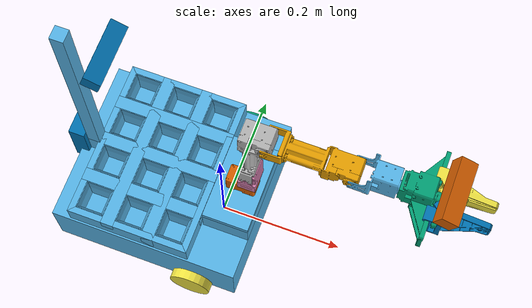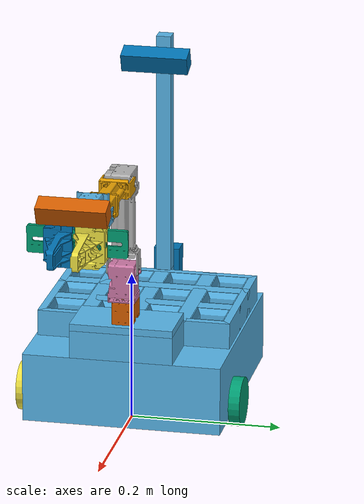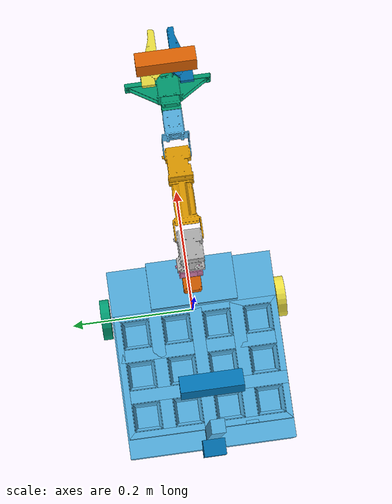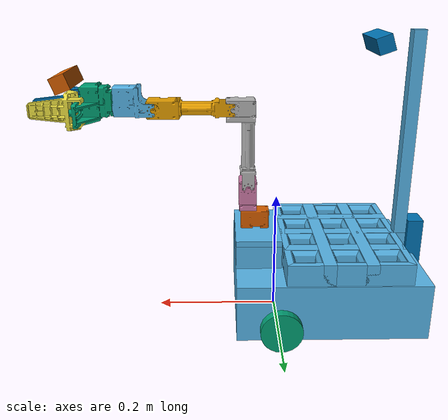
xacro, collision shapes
<?xml version="1.0" ?>
<!-- generated by make_xacro.py -->
<robot name="beebot" xmlns:xacro="http://www.ros.org/wiki/xacro">
  <xacro:arg name="mock_hardware" default="false"/>
  <xacro:arg name="mock_effort" default="0.0"/>
  <xacro:arg name="port" default="/dev/opencr"/>
  <xacro:arg name="twist_state" default="true"/>  <!-- true: joint2·3 상태 = 엔코더 + 중력 비틀림 (BeebotSystemHardware 헤더) · 강성 측정만 false -->
  <xacro:arg name="mesh_uri" default="package://ros_system/urdf/meshes"/>
  <link name="base_footprint"/>
  <joint name="base_joint" type="fixed">
    <parent link="base_footprint"/>
    <child link="base_link"/>
    <origin rpy="0.000000 -0.000000 0.000000" xyz="0.000000 0.000000 0.010000"/>
  </joint>
  <link name="base_link">
    <inertial>
      <origin rpy="0 0 0" xyz="-0.090000 -0.000158 0.082489"/>
      <mass value="2.597760"/>
      <inertia ixx="2.9371e-02" ixy="-1.9928e-05" ixz="6.7071e-03" iyy="3.3932e-02" iyz="-2.3183e-06" izz="3.0000e-02"/>
    </inertial>
    <visual>
      <origin rpy="0 0 0" xyz="0 0 0"/>
      <geometry>
        <mesh filename="$(arg mesh_uri)/base_link.stl" scale="0.001 0.001 0.001"/>
      </geometry>
    </visual>
    <!-- 2026-11-11 real plate stack: plates 8.5 mm, gaps 29 / 38.5 / 38.5, 1F bottom to 4F top 140 mm. base_link mesh remapped in z; 3F-mounted frames (basket, pole, battery) +1.7 mm, 4F (arm) +3.8 mm -->
    <!-- storage_support x 12: outer 44.5, hole 34, 35 mm high, top 8 mm chamfered to 42 -->
    <visual name="storage_support_0">
      <origin rpy="0 0 0" xyz="-0.169840 -0.097500 0.092700"/>
      <geometry>
        <mesh filename="$(arg mesh_uri)/storage_support.stl" scale="0.001 0.001 0.001"/>
      </geometry>
    </visual>
    <visual name="storage_support_1">
      <origin rpy="0 0 0" xyz="-0.169840 -0.032500 0.092700"/>
      <geometry>
        <mesh filename="$(arg mesh_uri)/storage_support.stl" scale="0.001 0.001 0.001"/>
      </geometry>
    </visual>
    <visual name="storage_support_2">
      <origin rpy="0 0 0" xyz="-0.169840 0.032500 0.092700"/>
      <geometry>
        <mesh filename="$(arg mesh_uri)/storage_support.stl" scale="0.001 0.001 0.001"/>
      </geometry>
    </visual>
    <visual name="storage_support_3">
      <origin rpy="0 0 0" xyz="-0.169840 0.097500 0.092700"/>
      <geometry>
        <mesh filename="$(arg mesh_uri)/storage_support.stl" scale="0.001 0.001 0.001"/>
      </geometry>
    </visual>
    <visual name="storage_support_4">
      <origin rpy="0 0 0" xyz="-0.104840 -0.097500 0.092700"/>
      <geometry>
        <mesh filename="$(arg mesh_uri)/storage_support.stl" scale="0.001 0.001 0.001"/>
      </geometry>
    </visual>
    <visual name="storage_support_5">
      <origin rpy="0 0 0" xyz="-0.104840 -0.032500 0.092700"/>
      <geometry>
        <mesh filename="$(arg mesh_uri)/storage_support.stl" scale="0.001 0.001 0.001"/>
      </geometry>
    </visual>
    <visual name="storage_support_6">
      <origin rpy="0 0 0" xyz="-0.104840 0.032500 0.092700"/>
      <geometry>
        <mesh filename="$(arg mesh_uri)/storage_support.stl" scale="0.001 0.001 0.001"/>
      </geometry>
    </visual>
    <visual name="storage_support_7">
      <origin rpy="0 0 0" xyz="-0.104840 0.097500 0.092700"/>
      <geometry>
        <mesh filename="$(arg mesh_uri)/storage_support.stl" scale="0.001 0.001 0.001"/>
      </geometry>
    </visual>
    <visual name="storage_support_8">
      <origin rpy="0 0 0" xyz="-0.039840 -0.097500 0.092700"/>
      <geometry>
        <mesh filename="$(arg mesh_uri)/storage_support.stl" scale="0.001 0.001 0.001"/>
      </geometry>
    </visual>
    <visual name="storage_support_9">
      <origin rpy="0 0 0" xyz="-0.039840 -0.032500 0.092700"/>
      <geometry>
        <mesh filename="$(arg mesh_uri)/storage_support.stl" scale="0.001 0.001 0.001"/>
      </geometry>
    </visual>
    <visual name="storage_support_10">
      <origin rpy="0 0 0" xyz="-0.039840 0.032500 0.092700"/>
      <geometry>
        <mesh filename="$(arg mesh_uri)/storage_support.stl" scale="0.001 0.001 0.001"/>
      </geometry>
    </visual>
    <visual name="storage_support_11">
      <origin rpy="0 0 0" xyz="-0.039840 0.097500 0.092700"/>
      <geometry>
        <mesh filename="$(arg mesh_uri)/storage_support.stl" scale="0.001 0.001 0.001"/>
      </geometry>
    </visual>
    <collision>
      <origin rpy="0.000000 0.000000 0.000000" xyz="-0.081850 0.000000 0.046350"/>
      <geometry>
        <box size="0.301300 0.265600 0.092700"/>
      </geometry>
    </collision>
    <collision>
      <origin rpy="0.000000 0.000000 0.000000" xyz="0.032000 0.000000 0.111550"/>
      <geometry>
        <box size="0.073600 0.137600 0.037700"/>
      </geometry>
    </collision>
    <collision>
      <origin rpy="0.000000 0.000000 0.000000" xyz="-0.209400 0.000000 0.110375"/>
      <geometry>
        <box size="0.020000 0.020000 0.035350"/>
      </geometry>
    </collision>
    <collision>
      <origin rpy="0.000000 0.000000 0.000000" xyz="0.032000 0.000000 0.135175"/>
      <geometry>
        <box size="0.073600 0.137600 0.009550"/>
      </geometry>
    </collision>
    <collision>
      <origin rpy="0.000000 0.000000 0.000000" xyz="-0.209400 0.000000 0.293600"/>
      <geometry>
        <box size="0.020000 0.020000 0.331100"/>
      </geometry>
    </collision>
    <collision>
      <origin rpy="0 0 0" xyz="-0.177000 0.064000 -0.005237"/>
      <geometry>
        <sphere radius="0.004763"/>
      </geometry>
    </collision>
    <collision>
      <origin rpy="0 0 0" xyz="-0.177000 -0.064000 -0.005237"/>
      <geometry>
        <sphere radius="0.004763"/>
      </geometry>
    </collision>
    <collision name="storage_collision_0">
      <origin rpy="1.570796 0.000000 0.000000" xyz="-0.064000 0.000000 0.001200"/>
      <geometry>
        <mesh filename="$(arg mesh_uri)/storage_collision/storage_0.stl" scale="0.001 0.001 0.001"/>
      </geometry>
    </collision>
    <collision name="storage_collision_1">
      <origin rpy="1.570796 0.000000 0.000000" xyz="-0.064000 0.000000 0.001200"/>
      <geometry>
        <mesh filename="$(arg mesh_uri)/storage_collision/storage_1.stl" scale="0.001 0.001 0.001"/>
      </geometry>
    </collision>
    <collision name="storage_collision_2">
      <origin rpy="1.570796 0.000000 0.000000" xyz="-0.064000 0.000000 0.001200"/>
      <geometry>
        <mesh filename="$(arg mesh_uri)/storage_collision/storage_2.stl" scale="0.001 0.001 0.001"/>
      </geometry>
    </collision>
    <collision name="storage_collision_3">
      <origin rpy="1.570796 0.000000 0.000000" xyz="-0.064000 0.000000 0.001200"/>
      <geometry>
        <mesh filename="$(arg mesh_uri)/storage_collision/storage_3.stl" scale="0.001 0.001 0.001"/>
      </geometry>
    </collision>
    <collision name="storage_collision_4">
      <origin rpy="1.570796 0.000000 0.000000" xyz="-0.064000 0.000000 0.001200"/>
      <geometry>
        <mesh filename="$(arg mesh_uri)/storage_collision/storage_4.stl" scale="0.001 0.001 0.001"/>
      </geometry>
    </collision>
    <collision name="storage_collision_5">
      <origin rpy="1.570796 0.000000 0.000000" xyz="-0.064000 0.000000 0.001200"/>
      <geometry>
        <mesh filename="$(arg mesh_uri)/storage_collision/storage_5.stl" scale="0.001 0.001 0.001"/>
      </geometry>
    </collision>
    <collision name="storage_collision_6">
      <origin rpy="1.570796 0.000000 0.000000" xyz="-0.064000 0.000000 0.001200"/>
      <geometry>
        <mesh filename="$(arg mesh_uri)/storage_collision/storage_6.stl" scale="0.001 0.001 0.001"/>
      </geometry>
    </collision>
    <collision name="storage_collision_7">
      <origin rpy="1.570796 0.000000 0.000000" xyz="-0.064000 0.000000 0.001200"/>
      <geometry>
        <mesh filename="$(arg mesh_uri)/storage_collision/storage_7.stl" scale="0.001 0.001 0.001"/>
      </geometry>
    </collision>
    <collision name="storage_collision_8">
      <origin rpy="1.570796 0.000000 0.000000" xyz="-0.064000 0.000000 0.001200"/>
      <geometry>
        <mesh filename="$(arg mesh_uri)/storage_collision/storage_8.stl" scale="0.001 0.001 0.001"/>
      </geometry>
    </collision>
    <collision name="storage_support_0_0">
      <origin rpy="0 0 0" xyz="-0.169840 -0.097500 0.092700"/>
      <geometry>
        <mesh filename="$(arg mesh_uri)/storage_support_wall_0.stl" scale="0.001 0.001 0.001"/>
      </geometry>
    </collision>
    <collision name="storage_support_0_1">
      <origin rpy="0 0 0" xyz="-0.169840 -0.097500 0.092700"/>
      <geometry>
        <mesh filename="$(arg mesh_uri)/storage_support_wall_1.stl" scale="0.001 0.001 0.001"/>
      </geometry>
    </collision>
    <collision name="storage_support_0_2">
      <origin rpy="0 0 0" xyz="-0.169840 -0.097500 0.092700"/>
      <geometry>
        <mesh filename="$(arg mesh_uri)/storage_support_wall_2.stl" scale="0.001 0.001 0.001"/>
      </geometry>
    </collision>
    <collision name="storage_support_0_3">
      <origin rpy="0 0 0" xyz="-0.169840 -0.097500 0.092700"/>
      <geometry>
        <mesh filename="$(arg mesh_uri)/storage_support_wall_3.stl" scale="0.001 0.001 0.001"/>
      </geometry>
    </collision>
    <collision name="storage_support_1_0">
      <origin rpy="0 0 0" xyz="-0.169840 -0.032500 0.092700"/>
      <geometry>
        <mesh filename="$(arg mesh_uri)/storage_support_wall_0.stl" scale="0.001 0.001 0.001"/>
      </geometry>
    </collision>
    <collision name="storage_support_1_1">
      <origin rpy="0 0 0" xyz="-0.169840 -0.032500 0.092700"/>
      <geometry>
        <mesh filename="$(arg mesh_uri)/storage_support_wall_1.stl" scale="0.001 0.001 0.001"/>
      </geometry>
    </collision>
    <collision name="storage_support_1_2">
      <origin rpy="0 0 0" xyz="-0.169840 -0.032500 0.092700"/>
      <geometry>
        <mesh filename="$(arg mesh_uri)/storage_support_wall_2.stl" scale="0.001 0.001 0.001"/>
      </geometry>
    </collision>
    <collision name="storage_support_1_3">
      <origin rpy="0 0 0" xyz="-0.169840 -0.032500 0.092700"/>
      <geometry>
        <mesh filename="$(arg mesh_uri)/storage_support_wall_3.stl" scale="0.001 0.001 0.001"/>
      </geometry>
    </collision>
    <collision name="storage_support_2_0">
      <origin rpy="0 0 0" xyz="-0.169840 0.032500 0.092700"/>
      <geometry>
        <mesh filename="$(arg mesh_uri)/storage_support_wall_0.stl" scale="0.001 0.001 0.001"/>
      </geometry>
    </collision>
    <collision name="storage_support_2_1">
      <origin rpy="0 0 0" xyz="-0.169840 0.032500 0.092700"/>
      <geometry>
        <mesh filename="$(arg mesh_uri)/storage_support_wall_1.stl" scale="0.001 0.001 0.001"/>
      </geometry>
    </collision>
    <collision name="storage_support_2_2">
      <origin rpy="0 0 0" xyz="-0.169840 0.032500 0.092700"/>
      <geometry>
        <mesh filename="$(arg mesh_uri)/storage_support_wall_2.stl" scale="0.001 0.001 0.001"/>
      </geometry>
    </collision>
    <collision name="storage_support_2_3">
      <origin rpy="0 0 0" xyz="-0.169840 0.032500 0.092700"/>
      <geometry>
        <mesh filename="$(arg mesh_uri)/storage_support_wall_3.stl" scale="0.001 0.001 0.001"/>
      </geometry>
    </collision>
    <collision name="storage_support_3_0">
      <origin rpy="0 0 0" xyz="-0.169840 0.097500 0.092700"/>
      <geometry>
        <mesh filename="$(arg mesh_uri)/storage_support_wall_0.stl" scale="0.001 0.001 0.001"/>
      </geometry>
    </collision>
    <collision name="storage_support_3_1">
      <origin rpy="0 0 0" xyz="-0.169840 0.097500 0.092700"/>
      <geometry>
        <mesh filename="$(arg mesh_uri)/storage_support_wall_1.stl" scale="0.001 0.001 0.001"/>
      </geometry>
    </collision>
    <collision name="storage_support_3_2">
      <origin rpy="0 0 0" xyz="-0.169840 0.097500 0.092700"/>
      <geometry>
        <mesh filename="$(arg mesh_uri)/storage_support_wall_2.stl" scale="0.001 0.001 0.001"/>
      </geometry>
    </collision>
    <collision name="storage_support_3_3">
      <origin rpy="0 0 0" xyz="-0.169840 0.097500 0.092700"/>
      <geometry>
        <mesh filename="$(arg mesh_uri)/storage_support_wall_3.stl" scale="0.001 0.001 0.001"/>
      </geometry>
    </collision>
    <collision name="storage_support_4_0">
      <origin rpy="0 0 0" xyz="-0.104840 -0.097500 0.092700"/>
      <geometry>
        <mesh filename="$(arg mesh_uri)/storage_support_wall_0.stl" scale="0.001 0.001 0.001"/>
      </geometry>
    </collision>
    <collision name="storage_support_4_1">
      <origin rpy="0 0 0" xyz="-0.104840 -0.097500 0.092700"/>
      <geometry>
        <mesh filename="$(arg mesh_uri)/storage_support_wall_1.stl" scale="0.001 0.001 0.001"/>
      </geometry>
    </collision>
    <collision name="storage_support_4_2">
      <origin rpy="0 0 0" xyz="-0.104840 -0.097500 0.092700"/>
      <geometry>
        <mesh filename="$(arg mesh_uri)/storage_support_wall_2.stl" scale="0.001 0.001 0.001"/>
      </geometry>
    </collision>
    <collision name="storage_support_4_3">
      <origin rpy="0 0 0" xyz="-0.104840 -0.097500 0.092700"/>
      <geometry>
        <mesh filename="$(arg mesh_uri)/storage_support_wall_3.stl" scale="0.001 0.001 0.001"/>
      </geometry>
    </collision>
    <collision name="storage_support_5_0">
      <origin rpy="0 0 0" xyz="-0.104840 -0.032500 0.092700"/>
      <geometry>
        <mesh filename="$(arg mesh_uri)/storage_support_wall_0.stl" scale="0.001 0.001 0.001"/>
      </geometry>
    </collision>
    <collision name="storage_support_5_1">
      <origin rpy="0 0 0" xyz="-0.104840 -0.032500 0.092700"/>
      <geometry>
        <mesh filename="$(arg mesh_uri)/storage_support_wall_1.stl" scale="0.001 0.001 0.001"/>
      </geometry>
    </collision>
    <collision name="storage_support_5_2">
      <origin rpy="0 0 0" xyz="-0.104840 -0.032500 0.092700"/>
      <geometry>
        <mesh filename="$(arg mesh_uri)/storage_support_wall_2.stl" scale="0.001 0.001 0.001"/>
      </geometry>
    </collision>
    <collision name="storage_support_5_3">
      <origin rpy="0 0 0" xyz="-0.104840 -0.032500 0.092700"/>
      <geometry>
        <mesh filename="$(arg mesh_uri)/storage_support_wall_3.stl" scale="0.001 0.001 0.001"/>
      </geometry>
    </collision>
    <collision name="storage_support_6_0">
      <origin rpy="0 0 0" xyz="-0.104840 0.032500 0.092700"/>
      <geometry>
        <mesh filename="$(arg mesh_uri)/storage_support_wall_0.stl" scale="0.001 0.001 0.001"/>
      </geometry>
    </collision>
    <collision name="storage_support_6_1">
      <origin rpy="0 0 0" xyz="-0.104840 0.032500 0.092700"/>
      <geometry>
        <mesh filename="$(arg mesh_uri)/storage_support_wall_1.stl" scale="0.001 0.001 0.001"/>
      </geometry>
    </collision>
    <collision name="storage_support_6_2">
      <origin rpy="0 0 0" xyz="-0.104840 0.032500 0.092700"/>
      <geometry>
        <mesh filename="$(arg mesh_uri)/storage_support_wall_2.stl" scale="0.001 0.001 0.001"/>
      </geometry>
    </collision>
    <collision name="storage_support_6_3">
      <origin rpy="0 0 0" xyz="-0.104840 0.032500 0.092700"/>
      <geometry>
        <mesh filename="$(arg mesh_uri)/storage_support_wall_3.stl" scale="0.001 0.001 0.001"/>
      </geometry>
    </collision>
    <collision name="storage_support_7_0">
      <origin rpy="0 0 0" xyz="-0.104840 0.097500 0.092700"/>
      <geometry>
        <mesh filename="$(arg mesh_uri)/storage_support_wall_0.stl" scale="0.001 0.001 0.001"/>
      </geometry>
    </collision>
    <collision name="storage_support_7_1">
      <origin rpy="0 0 0" xyz="-0.104840 0.097500 0.092700"/>
      <geometry>
        <mesh filename="$(arg mesh_uri)/storage_support_wall_1.stl" scale="0.001 0.001 0.001"/>
      </geometry>
    </collision>
    <collision name="storage_support_7_2">
      <origin rpy="0 0 0" xyz="-0.104840 0.097500 0.092700"/>
      <geometry>
        <mesh filename="$(arg mesh_uri)/storage_support_wall_2.stl" scale="0.001 0.001 0.001"/>
      </geometry>
    </collision>
    <collision name="storage_support_7_3">
      <origin rpy="0 0 0" xyz="-0.104840 0.097500 0.092700"/>
      <geometry>
        <mesh filename="$(arg mesh_uri)/storage_support_wall_3.stl" scale="0.001 0.001 0.001"/>
      </geometry>
    </collision>
    <collision name="storage_support_8_0">
      <origin rpy="0 0 0" xyz="-0.039840 -0.097500 0.092700"/>
      <geometry>
        <mesh filename="$(arg mesh_uri)/storage_support_wall_0.stl" scale="0.001 0.001 0.001"/>
      </geometry>
    </collision>
    <collision name="storage_support_8_1">
      <origin rpy="0 0 0" xyz="-0.039840 -0.097500 0.092700"/>
      <geometry>
        <mesh filename="$(arg mesh_uri)/storage_support_wall_1.stl" scale="0.001 0.001 0.001"/>
      </geometry>
    </collision>
    <collision name="storage_support_8_2">
      <origin rpy="0 0 0" xyz="-0.039840 -0.097500 0.092700"/>
      <geometry>
        <mesh filename="$(arg mesh_uri)/storage_support_wall_2.stl" scale="0.001 0.001 0.001"/>
      </geometry>
    </collision>
    <collision name="storage_support_8_3">
      <origin rpy="0 0 0" xyz="-0.039840 -0.097500 0.092700"/>
      <geometry>
        <mesh filename="$(arg mesh_uri)/storage_support_wall_3.stl" scale="0.001 0.001 0.001"/>
      </geometry>
    </collision>
    <collision name="storage_support_9_0">
      <origin rpy="0 0 0" xyz="-0.039840 -0.032500 0.092700"/>
      <geometry>
        <mesh filename="$(arg mesh_uri)/storage_support_wall_0.stl" scale="0.001 0.001 0.001"/>
      </geometry>
    </collision>
    <collision name="storage_support_9_1">
      <origin rpy="0 0 0" xyz="-0.039840 -0.032500 0.092700"/>
      <geometry>
        <mesh filename="$(arg mesh_uri)/storage_support_wall_1.stl" scale="0.001 0.001 0.001"/>
      </geometry>
    </collision>
    <collision name="storage_support_9_2">
      <origin rpy="0 0 0" xyz="-0.039840 -0.032500 0.092700"/>
      <geometry>
        <mesh filename="$(arg mesh_uri)/storage_support_wall_2.stl" scale="0.001 0.001 0.001"/>
      </geometry>
    </collision>
    <collision name="storage_support_9_3">
      <origin rpy="0 0 0" xyz="-0.039840 -0.032500 0.092700"/>
      <geometry>
        <mesh filename="$(arg mesh_uri)/storage_support_wall_3.stl" scale="0.001 0.001 0.001"/>
      </geometry>
    </collision>
    <collision name="storage_support_10_0">
      <origin rpy="0 0 0" xyz="-0.039840 0.032500 0.092700"/>
      <geometry>
        <mesh filename="$(arg mesh_uri)/storage_support_wall_0.stl" scale="0.001 0.001 0.001"/>
      </geometry>
    </collision>
    <collision name="storage_support_10_1">
      <origin rpy="0 0 0" xyz="-0.039840 0.032500 0.092700"/>
      <geometry>
        <mesh filename="$(arg mesh_uri)/storage_support_wall_1.stl" scale="0.001 0.001 0.001"/>
      </geometry>
    </collision>
    <collision name="storage_support_10_2">
      <origin rpy="0 0 0" xyz="-0.039840 0.032500 0.092700"/>
      <geometry>
        <mesh filename="$(arg mesh_uri)/storage_support_wall_2.stl" scale="0.001 0.001 0.001"/>
      </geometry>
    </collision>
    <collision name="storage_support_10_3">
      <origin rpy="0 0 0" xyz="-0.039840 0.032500 0.092700"/>
      <geometry>
        <mesh filename="$(arg mesh_uri)/storage_support_wall_3.stl" scale="0.001 0.001 0.001"/>
      </geometry>
    </collision>
    <collision name="storage_support_11_0">
      <origin rpy="0 0 0" xyz="-0.039840 0.097500 0.092700"/>
      <geometry>
        <mesh filename="$(arg mesh_uri)/storage_support_wall_0.stl" scale="0.001 0.001 0.001"/>
      </geometry>
    </collision>
    <collision name="storage_support_11_1">
      <origin rpy="0 0 0" xyz="-0.039840 0.097500 0.092700"/>
      <geometry>
        <mesh filename="$(arg mesh_uri)/storage_support_wall_1.stl" scale="0.001 0.001 0.001"/>
      </geometry>
    </collision>
    <collision name="storage_support_11_2">
      <origin rpy="0 0 0" xyz="-0.039840 0.097500 0.092700"/>
      <geometry>
        <mesh filename="$(arg mesh_uri)/storage_support_wall_2.stl" scale="0.001 0.001 0.001"/>
      </geometry>
    </collision>
    <collision name="storage_support_11_3">
      <origin rpy="0 0 0" xyz="-0.039840 0.097500 0.092700"/>
      <geometry>
        <mesh filename="$(arg mesh_uri)/storage_support_wall_3.stl" scale="0.001 0.001 0.001"/>
      </geometry>
    </collision>
  </link>
  <joint name="wheel_left_joint" type="continuous">
    <parent link="base_link"/>
    <child link="wheel_left_link"/>
    <origin rpy="0.000000 -0.000000 0.000000" xyz="0.000000 0.143900 0.023000"/>
    <axis xyz="0 1 0"/>
    <limit effort="3.0" velocity="8.063"/>
  </joint>
  <link name="wheel_left_link">
    <inertial>
      <origin rpy="0 0 0" xyz="0.000000 -0.000704 0.000002"/>
      <mass value="0.028500"/>
      <inertia ixx="1.1098e-05" ixy="5.7318e-09" ixz="3.1818e-09" iyy="2.0549e-05" iyz="-4.8114e-11" izz="1.1095e-05"/>
    </inertial>
    <visual>
      <origin rpy="0 0 0" xyz="0 0 0"/>
      <geometry>
        <mesh filename="$(arg mesh_uri)/wheel_left_link.stl" scale="0.001 0.001 0.001"/>
      </geometry>
    </visual>
    <collision>
      <origin rpy="1.570796 0 0" xyz="0 0 0"/>
      <geometry>
        <cylinder length="0.015000" radius="0.033000"/>
      </geometry>
    </collision>
  </link>
  <joint name="wheel_right_joint" type="continuous">
    <parent link="base_link"/>
    <child link="wheel_right_link"/>
    <origin rpy="0.000000 -0.000000 0.000000" xyz="0.000000 -0.143900 0.023000"/>
    <axis xyz="0 1 0"/>
    <limit effort="3.0" velocity="8.063"/>
  </joint>
  <link name="wheel_right_link">
    <inertial>
      <origin rpy="0 0 0" xyz="0.000000 0.000704 -0.000002"/>
      <mass value="0.028500"/>
      <inertia ixx="1.1098e-05" ixy="-5.7318e-09" ixz="-3.1818e-09" iyy="2.0549e-05" iyz="-4.8114e-11" izz="1.1095e-05"/>
    </inertial>
    <visual>
      <origin rpy="0 0 0" xyz="0 0 0"/>
      <geometry>
        <mesh filename="$(arg mesh_uri)/wheel_right_link.stl" scale="0.001 0.001 0.001"/>
      </geometry>
    </visual>
    <collision>
      <origin rpy="1.570796 0 0" xyz="0 0 0"/>
      <geometry>
        <cylinder length="0.015000" radius="0.033000"/>
      </geometry>
    </collision>
  </link>
  <joint name="pole_front_cam_joint" type="fixed">
    <parent link="base_link"/>
    <child link="pole_front_cam_link"/>
    <origin rpy="0.000000 0.331613 0.000000" xyz="-0.137869 0.000185 0.436632"/>
  </joint>
  <link name="pole_front_cam_link">
    <inertial>
      <origin rpy="0 0 0" xyz="-0.013393 0.001408 -0.000023"/>
      <mass value="0.072000"/>
      <inertia ixx="4.6203e-05" ixy="4.1597e-07" ixz="2.0009e-08" iyy="6.9218e-06" iyz="3.6648e-09" izz="4.6614e-05"/>
    </inertial>
    <visual>
      <origin rpy="0 0 0" xyz="0 0 0"/>
      <geometry>
        <mesh filename="$(arg mesh_uri)/camera_rear_link.stl" scale="0.001 0.001 0.001"/>
      </geometry>
    </visual>
    <collision>
      <origin rpy="0.000000 0.000000 0.000000" xyz="-0.012525 -0.000058 -0.000000"/>
      <geometry>
        <box size="0.025050 0.089714 0.025000"/>
      </geometry>
    </collision>
  </link>
  <joint name="arm_mount_joint" type="fixed">
    <parent link="base_link"/>
    <child link="arm_base_link"/>
    <!-- arm mount z 0.133975 -> 0.129275 (11/12): 바닥~4층 윗면 실측 145 mm (11/11 · 11/12), 0자세 joint2 · joint3 축 줄자 222 / 350 mm와 일치 (0.133975일 때 226.5 / 354.5) -->
    <origin rpy="-0.000000 0.000000 0.000000" xyz="0.047985 -0.00023 0.129275"/>
  </joint>
  <link name="arm_base_link">
    <inertial>
      <origin rpy="0.0 0.0 0.0" xyz="-0.01169226743052282 -3.774353380840405e-15 0.023926534323405226"/>
      <mass value="0.08108257974970318"/>
      <inertia ixx="1.2862502962900217e-05" ixy="6.251056457349735e-19" ixz="-1.811662342359175e-07" iyy="2.2531969968508323e-05" iyz="1.5086560978736273e-17" izz="1.9821050957242446e-05"/>
    </inertial>
    <visual name="arm_base_link_visual">
      <origin rpy="0.0 -0.0 0.0" xyz="0.0 0.0 0.0"/>
      <geometry>
        <mesh filename="$(arg mesh_uri)/arm_base_1.stl" scale="0.001 0.001 0.001"/>
      </geometry>
    </visual>
    <collision name="arm_base_link_collision">
      <origin rpy="0.0 -0.0 0.0" xyz="0.0 0.0 0.0"/>
      <geometry>
        <mesh filename="$(arg mesh_uri)/arm_base_1.stl" scale="0.001 0.001 0.001"/>
      </geometry>
    </collision>
  </link>
  <link name="shoulder_link">
    <inertial>
      <origin rpy="0.0 0.0 0.0" xyz="0.0 0.000668578344313189 0.028869490461060965"/>
      <mass value="0.08583374201044289"/>
      <inertia ixx="2.6324742259425243e-05" ixy="-7.312006911381859e-16" ixz="-9.128905585988183e-18" iyy="2.2861624315008813e-05" iyz="-8.980408739570743e-08" izz="1.4187591495603722e-05"/>
    </inertial>
    <visual name="shoulder_link_visual">
      <origin rpy="0.0 0.0 0.0" xyz="0.0 0.0 -0.0409"/>
      <geometry>
        <mesh filename="$(arg mesh_uri)/shoulder_1.stl" scale="0.001 0.001 0.001"/>
      </geometry>
    </visual>
    <collision name="shoulder_link_collision">
      <origin rpy="0.0 0.0 0.0" xyz="0.0 0.0 -0.0409"/>
      <geometry>
        <mesh filename="$(arg mesh_uri)/shoulder_1.stl" scale="0.001 0.001 0.001"/>
      </geometry>
    </collision>
  </link>
  <link name="upper_arm_link">
    <inertial>
      <origin rpy="1.570796326794511 0.0 3.141592653375372" xyz="0.008487065078161757 0.0004453244413869725 0.10499673065502808"/>
      <mass value="0.12886465633856012"/>
      <inertia ixx="0.00018774476358412258" ixy="2.3927185167595554e-05" ixz="2.494779573069466e-07" iyy="3.578068745086586e-05" iyz="-1.3200789827030247e-06" izz="0.00019584173585813564"/>
    </inertial>
    <visual name="upper_arm_link_visual">
      <origin rpy="0.0 0.0 0.0" xyz="0.0 0.0 -0.08249999999999999"/>
      <geometry>
        <mesh filename="$(arg mesh_uri)/link1_1.stl" scale="0.001 0.001 0.001"/>
      </geometry>
    </visual>
    <collision name="upper_arm_link_collision">
      <origin rpy="0.0 0.0 0.0" xyz="0.0 0.0 -0.08249999999999999"/>
      <geometry>
        <mesh filename="$(arg mesh_uri)/link1_1.stl" scale="0.001 0.001 0.001"/>
      </geometry>
    </collision>
  </link>
  <link name="forearm_link">
    <inertial>
      <origin rpy="1.5707963267949108 0.0 3.14159265337551" xyz="0.0937959598859132 0.0004892301406918195 6.576999200189225e-07"/>
      <mass value="0.117299760592073"/>
      <inertia ixx="1.9524545623177503e-05" ixy="-2.9158900918577e-09" ixz="1.0925502645848908e-06" iyy="0.00014316575812332259" iyz="3.773501040795638e-11" izz="0.00013706538722077516"/>
    </inertial>
    <visual name="forearm_link_visual">
      <origin rpy="0.0 0.0 0.0" xyz="-0.023999999999999997 0.0 -0.21050000000000005"/>
      <geometry>
        <mesh filename="$(arg mesh_uri)/link2_1.stl" scale="0.001 0.001 0.001"/>
      </geometry>
    </visual>
    <collision name="forearm_link_collision">
      <origin rpy="0.0 0.0 0.0" xyz="-0.023999999999999997 0.0 -0.21050000000000005"/>
      <geometry>
        <mesh filename="$(arg mesh_uri)/link2_1.stl" scale="0.001 0.001 0.001"/>
      </geometry>
    </collision>
  </link>
  <link name="wrist_link">
    <inertial>
      <origin rpy="1.570796326794886 0.0 3.1415926533755343" xyz="0.04362261925352582 -4.4208071231510715e-11 0.01144891623665953"/>
      <mass value="0.09015230299876778"/>
      <inertia ixx="2.376831067770098e-05" ixy="5.954218246732174e-07" ixz="-3.5110061152839838e-15" iyy="1.98868978503507e-05" iyz="2.3069523907684884e-16" izz="2.9205178935103743e-05"/>
    </inertial>
    <visual name="wrist_link_visual">
      <origin rpy="0.0 0.0 0.0" xyz="-0.148 0.0 -0.2105"/>
      <geometry>
        <mesh filename="$(arg mesh_uri)/wrist_1.stl" scale="0.001 0.001 0.001"/>
      </geometry>
    </visual>
    <collision name="wrist_link_collision">
      <origin rpy="0.0 0.0 0.0" xyz="-0.148 0.0 -0.2105"/>
      <geometry>
        <mesh filename="$(arg mesh_uri)/wrist_1.stl" scale="0.001 0.001 0.001"/>
      </geometry>
    </collision>
  </link>
  <link name="gripper_link">
    <inertial>
      <origin rpy="-1.5707963267948966 0.0 -1.5707963270091663" xyz="0.03333120209251042 1.5886189045943526e-07 0.008076961447025329"/>
      <mass value="0.17574131271191906"/>
      <inertia ixx="7.566997046639816e-05" ixy="4.58037525130514e-08" ixz="1.147686837904163e-09" iyy="0.00010679192530828156" iyz="-8.666284099644634e-06" izz="0.00010974001130350429"/>
    </inertial>
    <visual name="gripper_link_visual">
      <origin rpy="0.0 0.0 -4.2852856514244266e-10" xyz="-0.21089999999999998 0.0 -0.21050000000000005"/>
      <geometry>
        <mesh filename="$(arg mesh_uri)/gripper_body_1.stl" scale="0.001 0.001 0.001"/>
      </geometry>
    </visual>
    <visual name="gripper_cam_bracket_visual">  <!-- CB_A_v02 (2026-11-11). Camera pose stays on gripper_cam_joint -->
      <origin rpy="0 0 0" xyz="0 0 0"/>
      <geometry>
        <mesh filename="$(arg mesh_uri)/gripper_cam_bracket.stl" scale="0.001 0.001 0.001"/>
      </geometry>
    </visual>
    <collision name="gripper_link_collision">
      <origin rpy="0.0 0.0 -4.2852856514244266e-10" xyz="-0.21089999999999998 0.0 -0.21050000000000005"/>
      <geometry>
        <mesh filename="$(arg mesh_uri)/gripper_body_1.stl" scale="0.001 0.001 0.001"/>
      </geometry>
    </collision>
  </link>
  <link name="finger_left_link">
    <inertial>
      <origin rpy="-1.5707963267949216 0.0 -3.141592653574975" xyz="0.021558941309700663 -0.01842080592004969 8.180647437866214e-06"/>
      <mass value="0.0535652061896923"/>
      <inertia ixx="1.6044439735299576e-05" ixy="3.5963237118778324e-09" ixz="4.605246566927584e-06" iyy="3.0067540639167056e-05" iyz="1.5747727444362111e-09" izz="3.8262391196432324e-05"/>
    </inertial>
    <visual name="finger_left_link_visual">
      <origin rpy="0.0 0.0 0.0" xyz="-0.2640500000000004 -0.0386138699999949 -0.21050000000000046"/>
      <geometry>
        <mesh filename="$(arg mesh_uri)/finger_R_1.stl" scale="0.001 0.001 0.001"/>
      </geometry>
    </visual>
    <collision name="finger_left_link_collision">
      <origin rpy="0.0 0.0 0.0" xyz="-0.2640500000000004 -0.0386138699999949 -0.21050000000000046"/>
      <geometry>
        <mesh filename="$(arg mesh_uri)/finger_R_1.stl" scale="0.001 0.001 0.001"/>
      </geometry>
    </collision>
  </link>
  <link name="finger_right_link">
    <inertial>
      <origin rpy="1.5707963267948715 0.0 -3.141592653574975" xyz="0.021557990879750716 0.018420805939884263 -8.180633799630354e-06"/>
      <mass value="0.05356520623406594"/>
      <inertia ixx="1.6044441819699544e-05" ixy="3.5958195413410427e-09" ixz="4.605674889789638e-06" iyy="3.0069181530455354e-05" iyz="1.5747659279198598e-09" izz="3.826403413411749e-05"/>
    </inertial>
    <visual name="finger_right_link_visual">
      <origin rpy="0.0 0.0 0.0" xyz="-0.2640499999999996 0.03861387000000513 -0.2104999999999996"/>
      <geometry>
        <mesh filename="$(arg mesh_uri)/finger_L_1.stl" scale="0.001 0.001 0.001"/>
      </geometry>
    </visual>
    <collision name="finger_right_link_collision">
      <origin rpy="0.0 0.0 0.0" xyz="-0.2640499999999996 0.03861387000000513 -0.2104999999999996"/>
      <geometry>
        <mesh filename="$(arg mesh_uri)/finger_L_1.stl" scale="0.001 0.001 0.001"/>
      </geometry>
    </collision>
  </link>
  <joint name="joint1" type="revolute">
    <origin rpy="0.0 0.0 0.0" xyz="0.0 0.0 0.0409"/>
    <parent link="arm_base_link"/>
    <child link="shoulder_link"/>
    <axis xyz="0 0 1"/>
    <limit effort="4.1" lower="-3.14159" upper="3.14159" velocity="4.817"/>
  </joint>
  <joint name="joint2" type="revolute">
    <origin rpy="0.0 0.0 0.0" xyz="0.0 0.0 0.041599999999999984"/>
    <parent link="shoulder_link"/>
    <child link="upper_arm_link"/>
    <axis xyz="0 1 0"/>
    <limit effort="4.1" lower="-1.919862" upper="1.919862" velocity="4.817"/>
  </joint>
  <joint name="joint3" type="revolute">
    <origin rpy="0.0 0.0 0.0" xyz="0.024 0.0 0.12800000000000003"/>
    <parent link="upper_arm_link"/>
    <child link="forearm_link"/>
    <axis xyz="0 1 0"/>
    <limit effort="4.1" lower="-1.570796" upper="1.396263" velocity="4.817"/>
  </joint>
  <joint name="joint4" type="revolute">
    <origin rpy="0.0 0.0 0.0" xyz="0.12400000000000001 0.0 0.0"/>
    <parent link="forearm_link"/>
    <child link="wrist_link"/>
    <axis xyz="0 1 0"/>
    <limit effort="4.1" lower="-1.7" upper="1.97" velocity="4.817"/>
  </joint>
  <joint name="joint5" type="revolute">
    <origin rpy="0.0 0.0 0.0" xyz="0.06290000000000001 0.0 0.0"/>
    <parent link="wrist_link"/>
    <child link="gripper_link"/>
    <axis xyz="1 0 0"/>
    <limit effort="4.1" lower="-3.141593" upper="3.141593" velocity="4.817"/>
  </joint>
  <joint name="gripper_left_joint" type="prismatic">
    <origin rpy="0.0 0.0 0.0" xyz="0.05315000000000042 0.03861386999999943 0.0"/>
    <parent link="gripper_link"/>
    <child link="finger_left_link"/>
    <axis xyz="0 1 0"/>
    <limit effort="20.0" lower="0.0000" upper="0.0265" velocity="0.07"/>
  </joint>
  <joint name="gripper_right_joint" type="prismatic">
    <origin rpy="0.0 0.0 0.0" xyz="0.053149999999999614 -0.03861387000000057 0.0"/>
    <parent link="gripper_link"/>
    <child link="finger_right_link"/>
    <axis xyz="0 -1 0"/>
    <limit effort="20.0" lower="0.0000" upper="0.0265" velocity="0.07"/>
    <mimic joint="gripper_left_joint" multiplier="1" offset="0"/>
  </joint>
  <!-- gripper_cam pitch 20.0 -> 20.8 deg (11/12 실측, 브래킷 CB_A 교체 후): look 자세 책상 평면 피팅 pitch + 높이 = +0.82° · −4.9 mm, 높이 몫은 팔 장착(arm_mount) 4.7 mm 과대였음 -->
  <joint name="gripper_cam_joint" type="fixed">
    <parent link="gripper_link"/>
    <child link="gripper_cam_link"/>
    <origin rpy="-0.00014947924188481 0.363028484 -0.0010995446528302402" xyz="0.08168099999994151 -0.0002730000175021933 0.04032500000000001"/>
  </joint>
  <link name="gripper_cam_link">
    <inertial>
      <origin rpy="0 0 0" xyz="-0.017727 0.001229 -0.001059"/>
      <mass value="0.088370"/>
      <inertia ixx="5.1824e-05" ixy="8.5769e-08" ixz="-2.1898e-06" iyy="1.7218e-05" iyz="-5.7372e-08" izz="5.9057e-05"/>
    </inertial>
    <visual>
      <origin rpy="0 0 0" xyz="0 0 0"/>
      <geometry>
        <mesh filename="$(arg mesh_uri)/camera_rear_link.stl" scale="0.001 0.001 0.001"/>
      </geometry>
    </visual>
    <collision>
      <origin rpy="0.000000 0.000000 0.000000" xyz="-0.012525 -0.000058 0.000000"/>
      <geometry>
        <box size="0.025050 0.089714 0.025000"/>
      </geometry>
    </collision>
  </link>
  <joint name="end_effector_joint" type="fixed">
    <parent link="gripper_link"/>
    <child link="end_effector_link"/>
    <origin rpy="-1.5707963264201519 1.5707959999869179 -1.5707963266344216" xyz="0.109055 -2.3367178972231404e-11 0.0"/>
  </joint>
  <link name="end_effector_link"/>
  <joint name="pole_front_cam_optical_joint" type="fixed">
    <parent link="pole_front_cam_link"/>
    <child link="pole_front_cam_color_optical_frame"/>
    <!-- D435 RGB lens: +32.5 mm left of body center, 4.3 mm behind front glass (realsense-ros _d435.urdf.xacro) -->
    <origin rpy="-1.570796 0.000000 -1.570796" xyz="-0.004300 0.032500 0.000000"/>
  </joint>
  <link name="pole_front_cam_color_optical_frame"/>
  <joint name="pole_front_cam_depth_optical_joint" type="fixed">
    <parent link="pole_front_cam_link"/>
    <child link="pole_front_cam_depth_optical_frame"/>
    <!-- RealSense point cloud is published in the depth optical frame. publish_tf=false라
         (publish_tf는 URDF와 중복 방지용) 이 고정 프레임을 URDF가 제공해야 한다. -->
    <origin rpy="-1.570796 0.000000 -1.570796" xyz="0.000000 0.000000 0.000000"/>
  </joint>
  <link name="pole_front_cam_depth_optical_frame"/>
  <joint name="gripper_cam_optical_joint" type="fixed">
    <parent link="gripper_cam_link"/>
    <child link="gripper_cam_color_optical_frame"/>
    <!-- D435 RGB lens: +32.5 mm left of body center, 4.3 mm behind front glass (realsense-ros _d435.urdf.xacro) -->
    <origin rpy="-1.570796 0.000000 -1.570796" xyz="-0.004300 0.032500 0.000000"/>
  </joint>
  <link name="gripper_cam_color_optical_frame"/>
  <joint name="gripper_cam_depth_optical_joint" type="fixed">
    <parent link="gripper_cam_link"/>
    <child link="gripper_cam_depth_optical_frame"/>
    <origin rpy="-1.570796 0.000000 -1.570796" xyz="0.000000 0.000000 0.000000"/>
  </joint>
  <link name="gripper_cam_depth_optical_frame"/>
  <link name="imu_link"/>
  <joint name="imu_joint" type="fixed">
    <parent link="base_link"/>
    <child link="imu_link"/>
    <origin rpy="0 0 0" xyz="0.0178 0 0.0590"/>  <!-- x: waffle front edge 0.0688 - 0.051 (measured); z: OpenCR board top in base_link mesh -->
  </joint>
  <!-- rear battery: ROBOTIS LB-012 (88x35x26 mm, 106 g), upright behind the pole, opposite the camera. Same as USD payloads/base.usda, Physics/physics.usda -->
  <joint name="battery_joint" type="fixed">
    <parent link="base_link"/>
    <child link="battery_link"/>
    <origin rpy="0 0 0" xyz="-0.2324 0 0.1079"/>
  </joint>
  <link name="battery_link">
    <inertial>
      <origin rpy="0 0 0" xyz="0 0 0"/>
      <mass value="0.106"/>
      <inertia ixx="7.9218e-05" ixy="0" ixz="0" iyy="7.4382e-05" iyz="0" izz="1.6793e-05"/>
    </inertial>
    <visual>
      <geometry>
        <box size="0.026 0.035 0.088"/>
      </geometry>
    </visual>
    <collision>
      <geometry>
        <box size="0.026 0.035 0.088"/>
      </geometry>
    </collision>
  </link>
  <!-- basket slots: cell floor center, 3 rows (x, pole -> arm) x 4 cols (y, -y -> +y) -->
  <joint name="basket_slot_0_joint" type="fixed">
    <parent link="base_link"/>
    <child link="basket_slot_0"/>
    <origin rpy="0 0 0" xyz="-0.16984 -0.0975 0.09295"/>
  </joint>
  <link name="basket_slot_0"/>
  <joint name="basket_slot_1_joint" type="fixed">
    <parent link="base_link"/>
    <child link="basket_slot_1"/>
    <origin rpy="0 0 0" xyz="-0.16984 -0.0325 0.09295"/>
  </joint>
  <link name="basket_slot_1"/>
  <joint name="basket_slot_2_joint" type="fixed">
    <parent link="base_link"/>
    <child link="basket_slot_2"/>
    <origin rpy="0 0 0" xyz="-0.16984 0.0325 0.09295"/>
  </joint>
  <link name="basket_slot_2"/>
  <joint name="basket_slot_3_joint" type="fixed">
    <parent link="base_link"/>
    <child link="basket_slot_3"/>
    <origin rpy="0 0 0" xyz="-0.16984 0.0975 0.09295"/>
  </joint>
  <link name="basket_slot_3"/>
  <joint name="basket_slot_4_joint" type="fixed">
    <parent link="base_link"/>
    <child link="basket_slot_4"/>
    <origin rpy="0 0 0" xyz="-0.10484 -0.0975 0.09295"/>
  </joint>
  <link name="basket_slot_4"/>
  <joint name="basket_slot_5_joint" type="fixed">
    <parent link="base_link"/>
    <child link="basket_slot_5"/>
    <origin rpy="0 0 0" xyz="-0.10484 -0.0325 0.09295"/>
  </joint>
  <link name="basket_slot_5"/>
  <joint name="basket_slot_6_joint" type="fixed">
    <parent link="base_link"/>
    <child link="basket_slot_6"/>
    <origin rpy="0 0 0" xyz="-0.10484 0.0325 0.09295"/>
  </joint>
  <link name="basket_slot_6"/>
  <joint name="basket_slot_7_joint" type="fixed">
    <parent link="base_link"/>
    <child link="basket_slot_7"/>
    <origin rpy="0 0 0" xyz="-0.10484 0.0975 0.09295"/>
  </joint>
  <link name="basket_slot_7"/>
  <joint name="basket_slot_8_joint" type="fixed">
    <parent link="base_link"/>
    <child link="basket_slot_8"/>
    <origin rpy="0 0 0" xyz="-0.03984 -0.0975 0.09295"/>
  </joint>
  <link name="basket_slot_8"/>
  <joint name="basket_slot_9_joint" type="fixed">
    <parent link="base_link"/>
    <child link="basket_slot_9"/>
    <origin rpy="0 0 0" xyz="-0.03984 -0.0325 0.09295"/>
  </joint>
  <link name="basket_slot_9"/>
  <joint name="basket_slot_10_joint" type="fixed">
    <parent link="base_link"/>
    <child link="basket_slot_10"/>
    <origin rpy="0 0 0" xyz="-0.03984 0.0325 0.09295"/>
  </joint>
  <link name="basket_slot_10"/>
  <joint name="basket_slot_11_joint" type="fixed">
    <parent link="base_link"/>
    <child link="basket_slot_11"/>
    <origin rpy="0 0 0" xyz="-0.03984 0.0975 0.09295"/>
  </joint>
  <link name="basket_slot_11"/>
  <!-- ================= ros2_control ================= -->
  <ros2_control name="BeebotSystem" type="system">
    <hardware>
      <plugin>control/BeebotSystemHardware</plugin>
      <param name="mock">$(arg mock_hardware)</param>
      <param name="mock_effort">$(arg mock_effort)</param>
      <param name="port">$(arg port)</param>
      <param name="twist_state">$(arg twist_state)</param>
      <param name="twist_compliance_j2">0.0817</param>  <!-- [rad/Nm] = controllers.yaml gravity_compliance_j2 -->
      <param name="twist_compliance_j3">0.0532</param>  <!-- [rad/Nm] = gravity_compliance_j3 -->
      <param name="baud_rate">1000000</param>
    </hardware>
    <joint name="wheel_left_joint">
      <command_interface name="velocity"/>
      <state_interface name="position"/>
      <state_interface name="velocity"/>
      <state_interface name="effort"/>  <!-- 바퀴 모터 전류 [A] (S 맨 끝) -->
    </joint>
    <joint name="wheel_right_joint">
      <command_interface name="velocity"/>
      <state_interface name="position"/>
      <state_interface name="velocity"/>
      <state_interface name="effort"/>  <!-- 바퀴 모터 전류 [A] (S 맨 끝) -->
    </joint>
    <joint name="joint1">
      <!-- [rad] 영점 오프셋: 서보 값 = 관절값 + offset (실측) — 11/08: joint1 0에서 손끝(축에서 0.20 m)이 왼쪽 10 mm → +2.86° -->
      <param name="offset">-0.050</param>
      <command_interface name="position"/>
      <state_interface name="position"/>
      <state_interface name="velocity"/>
      <state_interface name="effort"/>
    </joint>
    <joint name="joint2">
      <param name="offset">0.010</param>  <!-- [rad] 영점 오프셋: 서보 값 = 관절값 + offset (실측) — 11/11: 4자세 손끝 + 0자세 축 높이 맞춤 joint2 −0.58° (0자세에서 위팔이 뒤로 기움) -->
      <command_interface name="position"/>
      <state_interface name="position"/>
      <state_interface name="velocity"/>
      <state_interface name="effort"/>
    </joint>
    <joint name="joint3">
      <param name="offset">0.040</param>  <!-- [rad] 영점 오프셋: 서보 값 = 관절값 + offset (실측) — 11/11: 0자세 joint4 축이 joint3 축보다 3 mm 높음(0.016일 때) → +1.4° 더 -->
      <command_interface name="position"/>
      <state_interface name="position"/>
      <state_interface name="velocity"/>
      <state_interface name="effort"/>
    </joint>
    <joint name="joint4">
      <param name="offset">-0.036</param>  <!-- [rad] 영점 오프셋: 서보 값 = 관절값 + offset (실측) — 11/11: 0자세(손 수평) 손끝 줄자 344 mm vs TF 351.6 → 실제 관절이 +2.08° 더 숙임 · 손 수직 80 mm는 일치 · gripper_cam 책상 평면 7자세 피팅과 맞음 -->
      <command_interface name="position"/>
      <state_interface name="position"/>
      <state_interface name="velocity"/>
      <state_interface name="effort"/>
    </joint>
    <joint name="joint5">
      <param name="offset">-0.027</param>  <!-- [rad] 영점 오프셋: 서보 값 = 관절값 + offset (실측) — 11/11: gripper_cam 책상 평면 7자세(j5 ±30° 포함) 피팅 +1.53° -->
      <command_interface name="position"/>
      <state_interface name="position"/>
      <state_interface name="velocity"/>
      <state_interface name="effort"/>
    </joint>
    <joint name="gripper_left_joint">
      <param name="offset">0.0</param>  <!-- [m] 영점 오프셋: 서보 값 = 관절값 + offset (실측) -->
      <command_interface name="position"/>
      <command_interface name="effort"/>  <!-- 쥐는 힘 한계 [A] — gripper_controller max_effort_interface → 펌웨어 C 9번째 칸 -->
      <state_interface name="position"/>
      <state_interface name="velocity"/>
      <state_interface name="effort"/>
    </joint>
    <!-- 오른쪽 손가락은 mimic (robot_state_publisher가 계산) -->
    <sensor name="imu">
      <state_interface name="orientation.x"/>
      <state_interface name="orientation.y"/>
      <state_interface name="orientation.z"/>
      <state_interface name="orientation.w"/>
      <state_interface name="angular_velocity.x"/>
      <state_interface name="angular_velocity.y"/>
      <state_interface name="angular_velocity.z"/>
      <state_interface name="linear_acceleration.x"/>
      <state_interface name="linear_acceleration.y"/>
      <state_interface name="linear_acceleration.z"/>
      <param name="frame_id">imu_link</param>
    </sensor>
  </ros2_control>

</robot>
